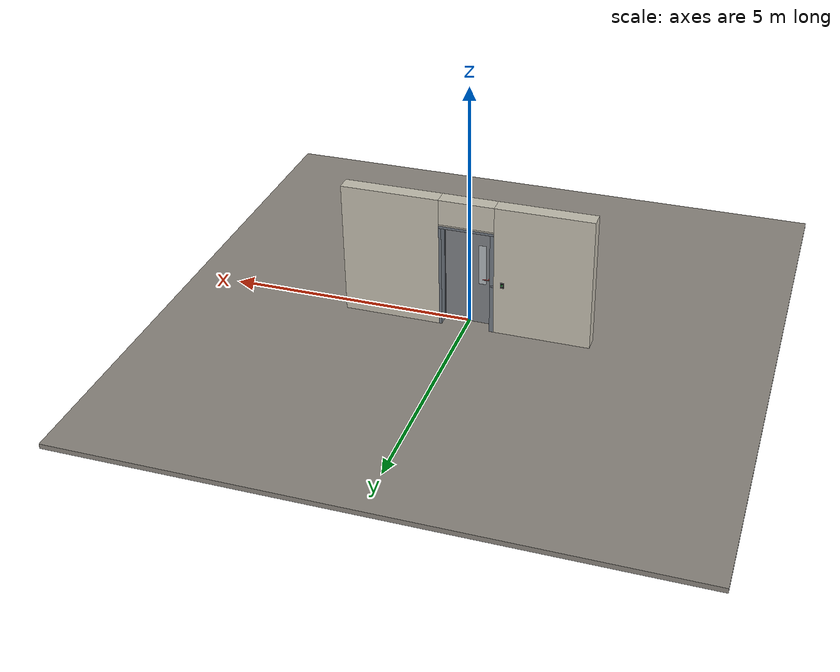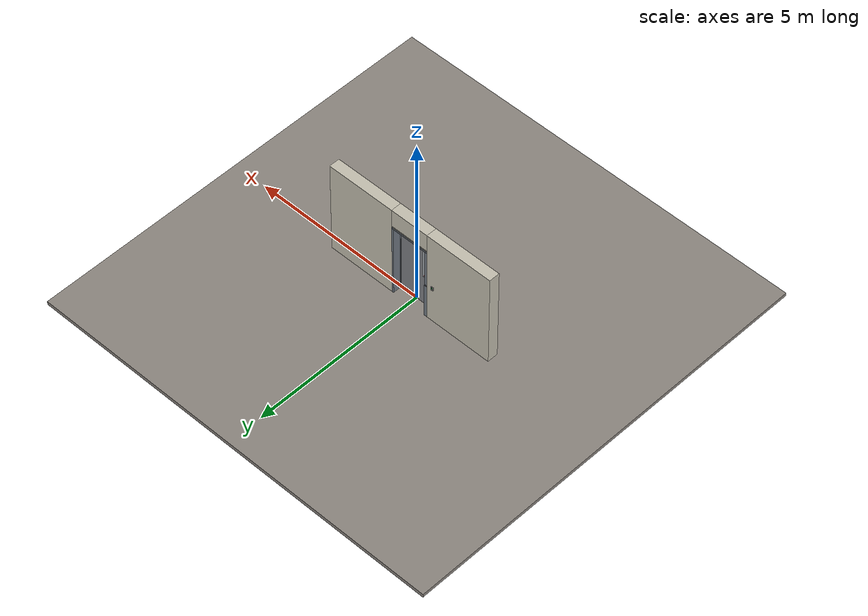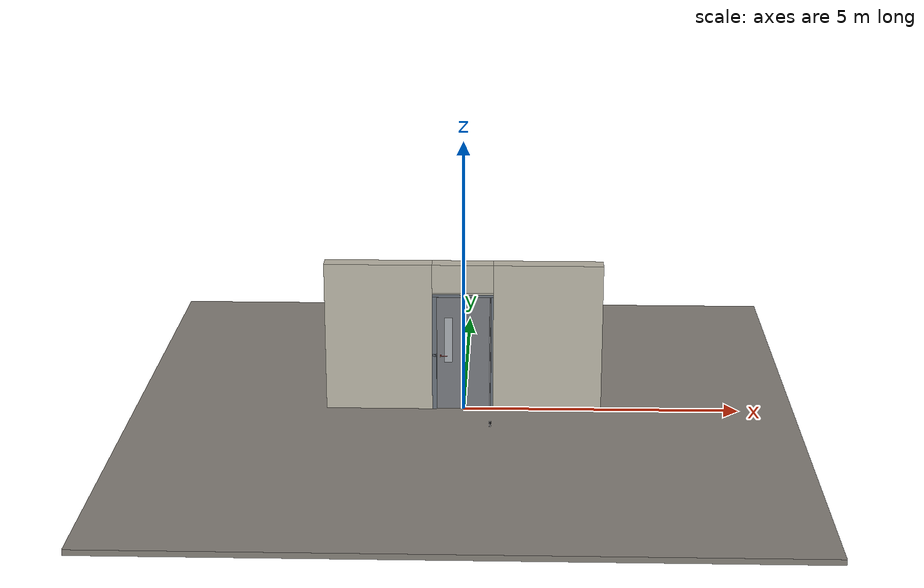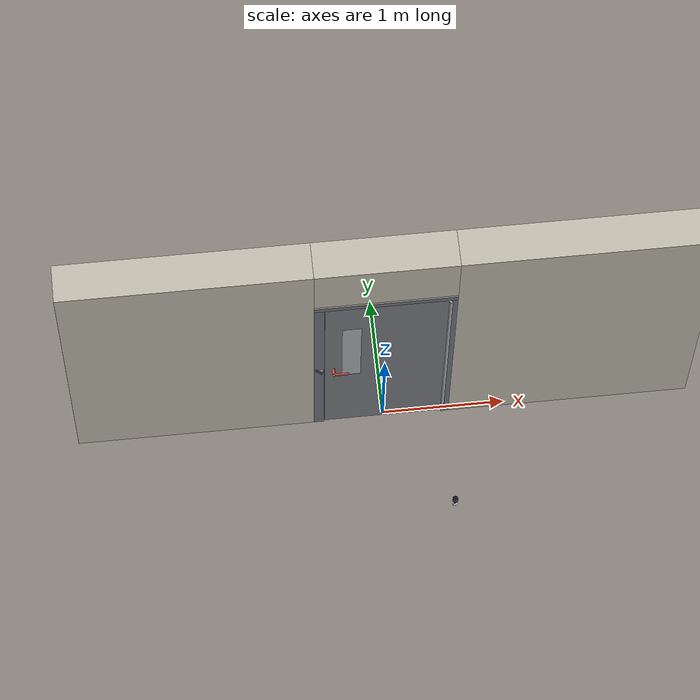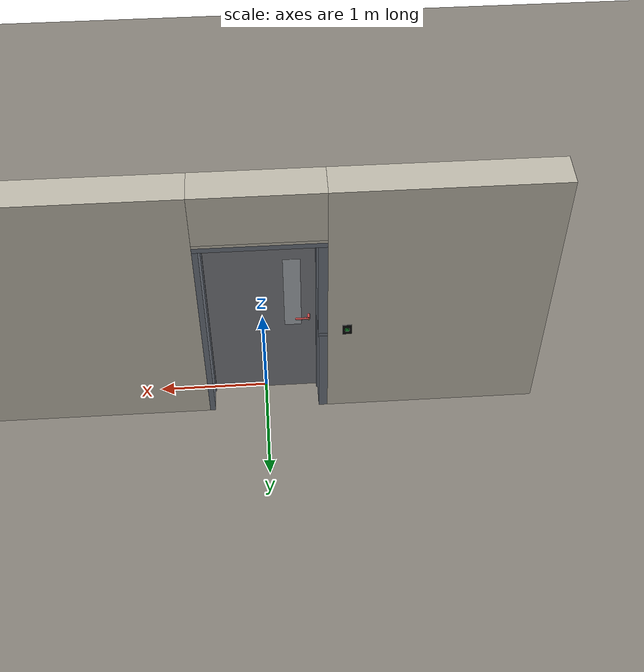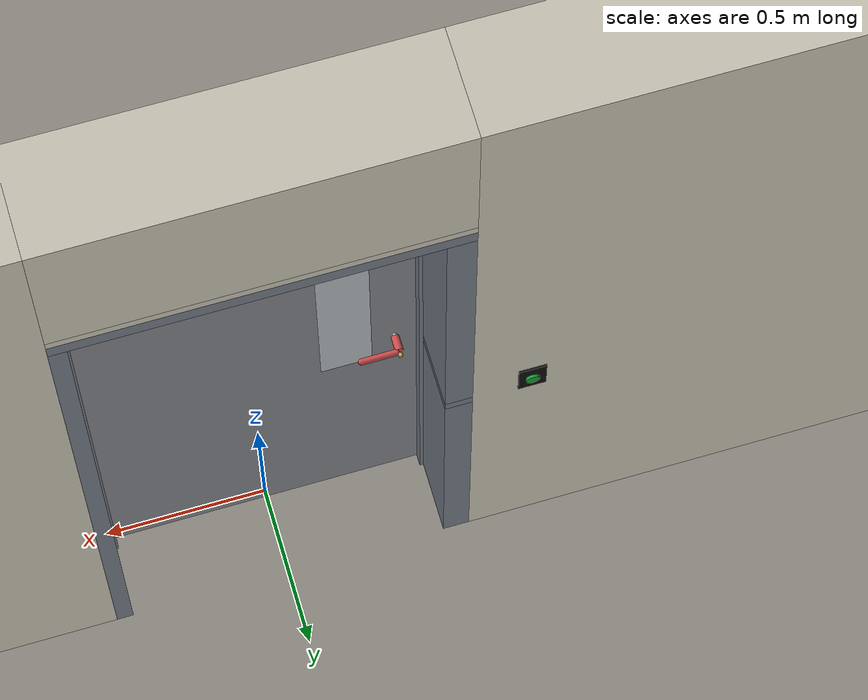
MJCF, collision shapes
<?xml version="1.0" ?>
<mujoco model="db0866_swing_single_full">
  <compiler angle="radian" meshdir="../../hardware" texturedir="../../textures" autolimits="true" inertiafromgeom="false"/>
  <option timestep="0.002" integrator="implicitfast" cone="elliptic" impratio="10" noslip_iterations="3">
    <flag multiccd="enable"/>
  </option>
  <size memory="16M"/>
  <default>
    <geom condim="4" solref="0.005 1" solimp="0.95 0.99 0.001"/>
    <joint solreflimit="0.005 1" solimplimit="0.95 0.99 0.001"/>
    <tendon solreflimit="0.005 1"/>
    <equality solref="0.002 1"/>
  </default>
  <visual>
    <headlight ambient="0.4 0.4 0.4" diffuse="0.7 0.7 0.7" specular="0.2 0.2 0.2"/>
    <quality shadowsize="4096"/>
    <map znear="0.01" zfar="60"/>
  </visual>
  <asset>
    <mesh name="lever_6268dcb28c" file="lever_6268dcb28c.obj"/>
    <material name="mat_floor" rgba="0.55 0.53 0.5 1" specular="0.2" shininess="0.15" reflectance="0"/>
    <material name="mat_wall" rgba="0.78 0.76 0.7 1" specular="0.2" shininess="0.1" reflectance="0"/>
    <material name="mat_leaf" rgba="0.5 0.51 0.53 1" specular="0.23" shininess="0.46" reflectance="0.02"/>
    <material name="mat_glass" rgba="0.9 0.93 0.95 0.6" specular="0.2" shininess="0.5" reflectance="0.1"/>
    <material name="mat_hinge" rgba="0.65 0.66 0.68 1" specular="0.74" shininess="0.5" reflectance="0.36"/>
    <material name="mat_op_stainless" rgba="0.75 0.76 0.77 1" specular="0.8" shininess="0.65" reflectance="0.4"/>
    <material name="mat_trim" rgba="0.85 0.66 0.3 1" specular="0.8" shininess="0.75" reflectance="0.4"/>
    <material name="mat_keyway" rgba="0.05 0.05 0.05 1" specular="0.2" shininess="0.5" reflectance="0"/>
    <material name="mat_bolt" rgba="0.75 0.76 0.77 1" specular="0.8" shininess="0.65" reflectance="0.4"/>
    <material name="mat_frame" rgba="0.45 0.48 0.52 1" specular="0.32" shininess="0.6" reflectance="0.08"/>
    <material name="mat_seal" rgba="0.1 0.1 0.1 1" specular="0.2" shininess="0.1" reflectance="0"/>
    <material name="mat_wallreader" rgba="0.05 0.05 0.05 1" specular="0.38" shininess="0.3" reflectance="0.12"/>
    <material name="mat_rex" rgba="0.1 0.6 0.2 1" specular="0.2" shininess="0.6" reflectance="0"/>
    <material name="mat_bumper_stop" rgba="0.08 0.08 0.08 1" specular="0.2" shininess="0.1" reflectance="0"/>
    <material name="mat_stop_base" rgba="0.9 0.9 0.92 1" specular="0.8" shininess="0.9" reflectance="0.4"/>
    <texture name="skybox" type="skybox" builtin="gradient" rgb1="0.6 0.7 0.85" rgb2="0.9 0.92 0.95" width="256" height="256"/>
  </asset>
  <worldbody>
    <light name="sun" pos="1.5 -2.5 4" dir="-0.3 0.5 -0.8" directional="true" diffuse="0.8 0.8 0.8" specular="0.3 0.3 0.3" castshadow="true"/>
    <light name="fill" pos="-1.5 2.5 3" dir="0.3 -0.5 -0.7" directional="true" diffuse="0.35 0.35 0.4" castshadow="false"/>
    <camera name="robot_view" pos="0 -2.516812 1.812087" xyaxes="1 0 0 0 0.26963 0.962964" fovy="52"/>
    <camera name="far_view" pos="0 2.758812 1.812087" xyaxes="-1 0 0 0 -0.26963 0.962964" fovy="52"/>
    <camera name="iso" pos="-2.004737 -2.094762 2.234138" xyaxes="0.741536 -0.670913 0 0.242917 0.268487 0.932151" fovy="46"/>
    <camera name="detail_handle" pos="-0.136 -0.877 1.32" xyaxes="0.97561 0.219512 0 -0.070934 0.315262 0.94635" fovy="38"/>
    <geom name="floor" type="box" size="6 6 0.05" pos="0 0 -0.05" material="mat_floor" group="0" contype="1" conaffinity="1" friction="0.8 0.005 0.0001" density="2400"/>
    <geom name="wall_left" type="box" size="0.967 0.15 1.3735" pos="-1.533 0.121 1.3735" material="mat_wall" group="0" contype="1" conaffinity="1" friction="0.6 0.005 0.0001" density="800"/>
    <geom name="wall_right" type="box" size="0.982 0.15 1.3735" pos="1.518 0.121 1.3735" material="mat_wall" group="0" contype="1" conaffinity="1" friction="0.6 0.005 0.0001" density="800"/>
    <geom name="wall_header" type="box" size="0.551 0.15 0.26" pos="-0.015 0.121 2.487" material="mat_wall" group="0" contype="1" conaffinity="1" friction="0.6 0.005 0.0001" density="800"/>
    <geom name="jamb_hinge" type="box" size="0.025 0.15 1.0735" pos="0.511 0.121 1.0735" material="mat_frame" group="0" contype="1" conaffinity="1" friction="0.6 0.005 0.0001" density="300"/>
    <geom name="strike_1040_wall_n" type="box" size="0.04 0.13075 0.018" pos="-0.526 0.14025 1.04" material="mat_frame" group="0" contype="1" conaffinity="1" friction="0.6 0.005 0.0001" density="300"/>
    <geom name="strike_1040_wall_p" type="box" size="0.04 0.008 0.018" pos="-0.526 -0.0175 1.04" material="mat_frame" group="0" contype="1" conaffinity="1" friction="0.6 0.005 0.0001" density="300"/>
    <geom name="strike_1040_ramp" type="box" size="0.04 0.018028 0.018" pos="-0.529282 -0.018312 1.04" quat="0.957092 0 0 -0.289784" material="mat_frame" group="0" contype="1" conaffinity="1" friction="0.12 0.005 0.0001" density="300"/>
    <geom name="strike_1040_back" type="box" size="0.0285 0.0095 0.018" pos="-0.5375 0 1.04" material="mat_frame" group="0" contype="1" conaffinity="1" friction="0.6 0.005 0.0001" density="300"/>
    <geom name="jamb_strike_0" type="box" size="0.04 0.15 0.511" pos="-0.526 0.121 0.511" material="mat_frame" group="0" contype="1" conaffinity="1" friction="0.6 0.005 0.0001" density="300"/>
    <geom name="jamb_strike_1" type="box" size="0.04 0.15 0.5445" pos="-0.526 0.121 1.6025" material="mat_frame" group="0" contype="1" conaffinity="1" friction="0.6 0.005 0.0001" density="300"/>
    <geom name="jamb_head" type="box" size="0.551 0.15 0.025" pos="-0.015 0.121 2.172" material="mat_frame" group="0" contype="1" conaffinity="1" friction="0.6 0.005 0.0001" density="300"/>
    <geom name="head_stud" type="box" size="0.551 0.15 0.015" pos="-0.015 0.121 2.212" material="mat_wall" group="0" contype="1" conaffinity="1" friction="0.6 0.005 0.0001" density="500"/>
    <geom name="stop_hinge" type="box" size="0.0055 0.016 1.0735" pos="0.4805 0.0385 1.0735" material="mat_frame" group="0" contype="1" conaffinity="1" friction="0.6 0.005 0.0001" density="300"/>
    <geom name="stop_strike" type="box" size="0.0055 0.016 1.0735" pos="-0.4805 0.0385 1.0735" material="mat_frame" group="0" contype="1" conaffinity="1" friction="0.6 0.005 0.0001" density="300"/>
    <geom name="stop_head" type="box" size="0.486 0.016 0.0055" pos="0 0.0385 2.1415" material="mat_frame" group="0" contype="1" conaffinity="1" friction="0.6 0.005 0.0001" density="300"/>
    <geom name="seal_hinge" type="box" size="0.004 0.002 1.0735" pos="0.483 0.024 1.0735" material="mat_seal" group="1" contype="0" conaffinity="0" density="1100"/>
    <geom name="seal_strike" type="box" size="0.004 0.002 1.0735" pos="-0.483 0.024 1.0735" material="mat_seal" group="1" contype="0" conaffinity="0" density="1100"/>
    <geom name="seal_head" type="box" size="0.466 0.002 0.008" pos="0 0.024 2.135" material="mat_seal" group="1" contype="0" conaffinity="0" density="1100"/>
    <geom name="rex_plate" type="box" size="0.04 0.003 0.06" pos="-0.736 0.274 1.1" material="mat_wallreader" group="1" contype="0" conaffinity="0" density="1000"/>
    <geom name="door_stop_base" type="cylinder" size="0.022 0.003" pos="0.499 -0.84925 0.003" material="mat_stop_base" group="0" contype="1" conaffinity="1" friction="0.6 0.005 0.0001" density="7850"/>
    <geom name="door_stop_post" type="cylinder" size="0.012 0.0245" pos="0.499 -0.84925 0.0305" material="mat_stop_base" group="0" contype="1" conaffinity="1" friction="0.6 0.005 0.0001" density="7850"/>
    <geom name="door_stop_bumper" type="cylinder" size="0.022 0.02" pos="0.499 -0.84925 0.075" material="mat_bumper_stop" group="0" contype="1" conaffinity="1" friction="0.6 0.005 0.0001" density="1100"/>
    <site name="approach_point" pos="0 -1.5 0" quat="1 0 0 0" size="0.05" rgba="0.2 0.9 0.2 0.5" group="4"/>
    <site name="goal_point" pos="0 1.5 0" quat="1 0 0 0" size="0.05" rgba="0.2 0.9 0.2 0.5" group="4"/>
    <site name="door_plane_center" pos="0 0 1.0735" quat="1 0 0 0" size="0.02" rgba="0.2 0.9 0.2 0.5" group="4"/>
    <body name="rex_button" pos="-0.736 0.277 1.1">
      <inertial pos="0 0.004 0" mass="0.010053" quat="0 0 0.707107 -0.707107" diaginertia="0.000001059 0.000001059 0.000002011"/>
      <joint name="rex_button_slide" type="slide" axis="0 -1 0" limited="true" range="0 0.004" damping="1" stiffness="1500" springref="-0.004" armature="0.1"/>
      <geom name="rex_button_geom" type="cylinder" size="0.02 0.004" pos="0 0.004 0" quat="0.707107 -0.707107 0 0" material="mat_rex" group="0" contype="1" conaffinity="1" friction="0.6 0.005 0.0001" density="1000"/>
    </body>
    <body name="leaf" pos="0.486 0 0">
      <inertial pos="-0.445369 -0.002426 1.076023" mass="42.006551" quat="0.503007 0.496967 -0.503014 0.496975" diaginertia="3.749411111 15.917015097 19.649356999"/>
      <joint name="leaf_hinge" type="hinge" axis="0 0 1" pos="-0.003 -0.029 0" limited="true" range="0 1.570796" solreflimit="0.02 1" damping="0.384212" frictionloss="2.264666" armature="0.02"/>
      <geom name="leaf_slab" type="box" size="0.4825 0.022 1.067" pos="-0.4855 0 1.076" material="mat_leaf" group="0" contype="1" conaffinity="1" friction="0.4 0.005 0.0001" density="1"/>
      <geom name="leaf_glass_0" type="box" size="0.075 0.0228 0.4268" pos="-0.75685 0 1.33208" material="mat_glass" group="1" contype="0" conaffinity="0" density="1"/>
      <geom name="hinge_continuous" type="cylinder" size="0.0136 1.057" pos="-0.003 -0.029 1.076" material="mat_hinge" group="1" contype="0" conaffinity="0" density="2700"/>
      <geom name="leaf_latch_bolt_faceplate" type="box" size="0.0006 0.014 0.028" pos="-0.9674 0 1.04" material="mat_bolt" group="1" contype="0" conaffinity="0" density="8500"/>
      <site name="leaf_edge_mid" pos="-0.968 0 1.067" quat="1 0 0 0" size="0.02" rgba="0.2 0.9 0.2 0.5" group="4"/>
      <body name="leaf_handle" pos="-0.898 0 1.04">
        <inertial pos="0.034236 -0.000902 0" mass="1.065931" quat="0.700002 0 0 -0.714141" diaginertia="0.002381881 0.004028137 0.00584214"/>
        <joint name="leaf_handle_hinge" type="hinge" axis="0 1 0" limited="true" range="0 0.06" damping="0.255799" frictionloss="0.05" stiffness="1.2" springref="-0.583333" armature="0.01"/>
        <geom name="leaf_handle_spindle" type="cylinder" size="0.006 0.03" pos="0 0 0" quat="0.707107 -0.707107 0 0" material="mat_op_stainless" group="1" contype="0" conaffinity="0" density="7850"/>
        <geom name="leaf_handle_lever_n" type="mesh" mesh="lever_6268dcb28c" pos="0 -0.022 0" quat="0 0 -0.707107 0.707107" material="mat_op_stainless" group="1" contype="0" conaffinity="0" density="3000"/>
        <geom name="leaf_handle_lever_col_n" type="capsule" size="0.0095 0.0505" pos="0.06 -0.077 0" quat="0.707107 0 0.707107 0" material="mat_op_stainless" group="3" contype="1" conaffinity="1" rgba="0.8 0.3 0.3 0.25" friction="0.7 0.01 0.0001" density="3000"/>
        <geom name="leaf_handle_hub_col_n" type="cylinder" size="0.012 0.022" pos="0 -0.052 0" quat="0.707107 -0.707107 0 0" material="mat_op_stainless" group="3" contype="1" conaffinity="1" rgba="0.8 0.3 0.3 0.25" friction="0.6 0.005 0.0001" density="3000"/>
        <geom name="leaf_handle_cylinder_n" type="cylinder" size="0.0085 0.006" pos="0 -0.0845 0" quat="0.707107 -0.707107 0 0" material="mat_trim" group="1" contype="0" conaffinity="0" density="7100"/>
        <geom name="leaf_handle_keyway_n" type="box" size="0.0012 0.0008 0.006" pos="0 -0.091 0" material="mat_keyway" group="1" contype="0" conaffinity="0" density="7100"/>
        <geom name="leaf_handle_lever_p" type="mesh" mesh="lever_6268dcb28c" pos="0 0.022 0" quat="0 0 0.707107 0.707107" material="mat_op_stainless" group="1" contype="0" conaffinity="0" density="3000"/>
        <geom name="leaf_handle_lever_col_p" type="capsule" size="0.0095 0.0505" pos="0.06 0.077 0" quat="0.707107 0 0.707107 0" material="mat_op_stainless" group="3" contype="1" conaffinity="1" rgba="0.8 0.3 0.3 0.25" friction="0.7 0.01 0.0001" density="3000"/>
        <geom name="leaf_handle_hub_col_p" type="cylinder" size="0.012 0.022" pos="0 0.052 0" quat="0.707107 -0.707107 0 0" material="mat_op_stainless" group="3" contype="1" conaffinity="1" rgba="0.8 0.3 0.3 0.25" friction="0.6 0.005 0.0001" density="3000"/>
        <geom name="leaf_handle_turn_button_p" type="cylinder" size="0.006 0.005" pos="0 0.0875 0" quat="0.707107 -0.707107 0 0" material="mat_trim" group="1" contype="0" conaffinity="0" density="7100"/>
        <site name="leaf_handle_grip_n" pos="0.096 -0.077 0" quat="1 0 0 0" size="0.012" rgba="0.2 0.9 0.2 0.5" group="4"/>
        <site name="leaf_handle_grip_p" pos="0.096 0.077 0" quat="1 0 0 0" size="0.012" rgba="0.2 0.9 0.2 0.5" group="4"/>
      </body>
      <body name="leaf_latch_bolt" pos="-0.968 0 1.04">
        <inertial pos="0.0055 0 0" mass="0.074627" quat="0.92388 0.382683 0 0" diaginertia="0.000002271 0.000013255 0.000013255"/>
        <joint name="leaf_latch_bolt_slide" type="slide" axis="1 0 0" limited="true" range="0 0.019" damping="2" frictionloss="0.3" stiffness="550" springref="-0.01" armature="0.1"/>
        <geom name="leaf_latch_bolt_capsule" type="capsule" size="0.008 0.0165" pos="0.0055 0 0" quat="0.707107 0 -0.707107 0" material="mat_bolt" group="0" contype="1" conaffinity="1" friction="0.2 0.005 0.0001" density="8500"/>
      </body>
    </body>
  </worldbody>
  <tendon>
    <fixed name="leaf_latch_bolt_coupling" limited="true" range="0 10">
      <joint joint="leaf_latch_bolt_slide" coef="1"/>
      <joint joint="leaf_handle_hinge" coef="-0.020879"/>
    </fixed>
  </tendon>
  <sensor>
    <jointpos name="leaf_hinge_pos" joint="leaf_hinge"/>
    <jointvel name="leaf_hinge_vel" joint="leaf_hinge"/>
    <jointpos name="leaf_handle_hinge_pos" joint="leaf_handle_hinge"/>
    <jointvel name="leaf_handle_hinge_vel" joint="leaf_handle_hinge"/>
    <jointpos name="leaf_latch_bolt_slide_pos" joint="leaf_latch_bolt_slide"/>
    <jointvel name="leaf_latch_bolt_slide_vel" joint="leaf_latch_bolt_slide"/>
    <jointpos name="rex_button_slide_pos" joint="rex_button_slide"/>
    <jointvel name="rex_button_slide_vel" joint="rex_button_slide"/>
  </sensor>
</mujoco>
